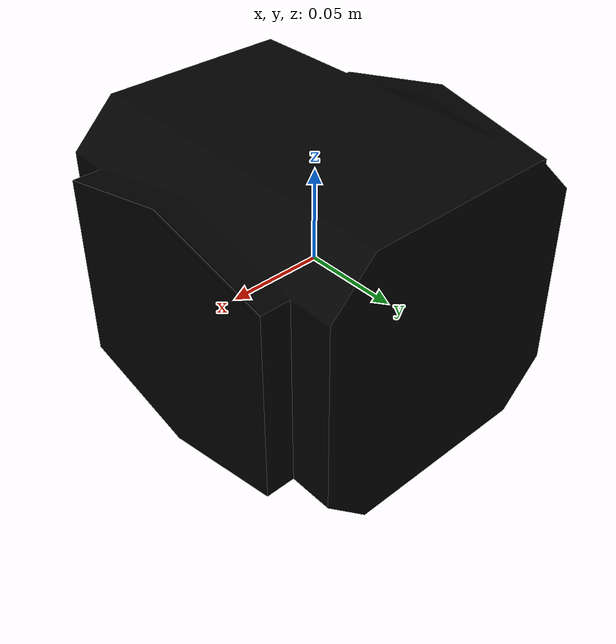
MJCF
<mujoco model="body_link3">
  <default>
    <default class="visual">
      <geom group="2" type="mesh" contype="0" conaffinity="0"/>
    </default>
    <default class="collision">
      <geom group="3" type="mesh"/>
    </default>
  </default>
  <asset>
    <material name="material_body_link3_0" specular="0.20000000000000004" shininess="1.0" rgba="0.00000000 0.00000000 0.00000000 1.0"/>
    <mesh file="body_link3.obj"/>
  </asset>
  <worldbody>
    <body name="body_link3">
      <geom material="material_body_link3_0" mesh="body_link3" class="visual"/>
      <geom mesh="body_link3" class="collision"/>
    </body>
  </worldbody>
</mujoco>
